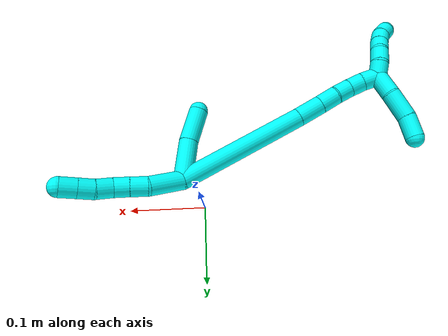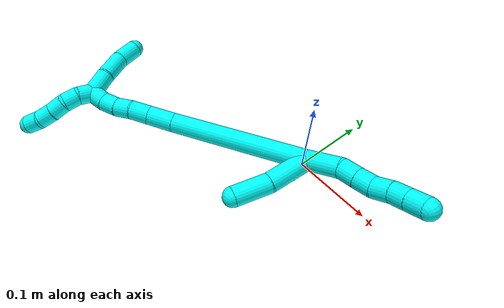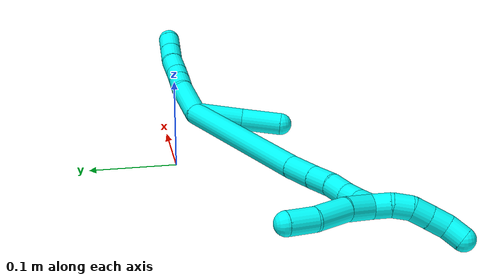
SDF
<sdf version="1.7">
 <world name="default">
  <model name="3">
   <static>0</static>
   <link name="3">
    <collision name="collision-cylinder-e_1_2_8">
     <pose>0.021438 0.005071 -0.004015 -2.2406 1.27777 -1.98725</pose>
     <geometry><cylinder><radius>0.0125</radius><length>0.044784</length></cylinder></geometry>
     <surface>
      <friction><ode><mu>1.16</mu><mu2>1.16</mu2><slip1>0</slip1><slip2>0</slip2></ode></friction>
      <contact><ode><kp>1e+06</kp><kd>1</kd><max_vel>0</max_vel><min_depth>0.001</min_depth></ode></contact>
     </surface>
    </collision>
    <visual name="visual-cylinder-e_1_2_8">
     <pose>0.021438 0.005071 -0.004015 -2.2406 1.27777 -1.98725</pose>
     <geometry><cylinder><radius>0.0125</radius><length>0.044784</length></cylinder></geometry>
     <material><ambient>0.003922 1 0.996078 1</ambient></material>
    </visual>
    <collision name="collision-cylinder-e_2_8_9">
     <pose>0.053793 0.010164 -0.007885 -0.152832 1.55724 -0.150782</pose>
     <geometry><cylinder><radius>0.0125</radius><length>0.021837</length></cylinder></geometry>
     <surface>
      <friction><ode><mu>1.16</mu><mu2>1.16</mu2><slip1>0</slip1><slip2>0</slip2></ode></friction>
      <contact><ode><kp>1e+06</kp><kd>1</kd><max_vel>0</max_vel><min_depth>0.001</min_depth></ode></contact>
     </surface>
    </collision>
    <visual name="visual-cylinder-e_2_8_9">
     <pose>0.053793 0.010164 -0.007885 -0.152832 1.55724 -0.150782</pose>
     <geometry><cylinder><radius>0.0125</radius><length>0.021837</length></cylinder></geometry>
     <material><ambient>0.003922 1 0.996078 1</ambient></material>
    </visual>
    <collision name="collision-cylinder-e_3_9_10">
     <pose>0.074806 0.010453 -0.007837 -1.92469 1.54263 -1.89814</pose>
     <geometry><cylinder><radius>0.0125</radius><length>0.020199</length></cylinder></geometry>
     <surface>
      <friction><ode><mu>1.16</mu><mu2>1.16</mu2><slip1>0</slip1><slip2>0</slip2></ode></friction>
      <contact><ode><kp>1e+06</kp><kd>1</kd><max_vel>0</max_vel><min_depth>0.001</min_depth></ode></contact>
     </surface>
    </collision>
    <visual name="visual-cylinder-e_3_9_10">
     <pose>0.074806 0.010453 -0.007837 -1.92469 1.54263 -1.89814</pose>
     <geometry><cylinder><radius>0.0125</radius><length>0.020199</length></cylinder></geometry>
     <material><ambient>0.003922 1 0.996078 1</ambient></material>
    </visual>
    <collision name="collision-cylinder-e_4_10_11">
     <pose>0.095262 0.013651 -0.009044 -1.93231 1.27707 -1.64235</pose>
     <geometry><cylinder><radius>0.0125</radius><length>0.021649</length></cylinder></geometry>
     <surface>
      <friction><ode><mu>1.16</mu><mu2>1.16</mu2><slip1>0</slip1><slip2>0</slip2></ode></friction>
      <contact><ode><kp>1e+06</kp><kd>1</kd><max_vel>0</max_vel><min_depth>0.001</min_depth></ode></contact>
     </surface>
    </collision>
    <visual name="visual-cylinder-e_4_10_11">
     <pose>0.095262 0.013651 -0.009044 -1.93231 1.27707 -1.64235</pose>
     <geometry><cylinder><radius>0.0125</radius><length>0.021649</length></cylinder></geometry>
     <material><ambient>0.003922 1 0.996078 1</ambient></material>
    </visual>
    <collision name="collision-cylinder-e_5_11_12">
     <pose>0.115382 0.018758 -0.009391 -1.23418 1.33885 -1.0232</pose>
     <geometry><cylinder><radius>0.0125</radius><length>0.020054</length></cylinder></geometry>
     <surface>
      <friction><ode><mu>1.16</mu><mu2>1.16</mu2><slip1>0</slip1><slip2>0</slip2></ode></friction>
      <contact><ode><kp>1e+06</kp><kd>1</kd><max_vel>0</max_vel><min_depth>0.001</min_depth></ode></contact>
     </surface>
    </collision>
    <visual name="visual-cylinder-e_5_11_12">
     <pose>0.115382 0.018758 -0.009391 -1.23418 1.33885 -1.0232</pose>
     <geometry><cylinder><radius>0.0125</radius><length>0.020054</length></cylinder></geometry>
     <material><ambient>0.003922 1 0.996078 1</ambient></material>
    </visual>
    <collision name="collision-cylinder-e_6_12_6">
     <pose>0.135589 0.023284 -0.007845 -1.24862 1.33796 -1.03548</pose>
     <geometry><cylinder><radius>0.0125</radius><length>0.021477</length></cylinder></geometry>
     <surface>
      <friction><ode><mu>1.16</mu><mu2>1.16</mu2><slip1>0</slip1><slip2>0</slip2></ode></friction>
      <contact><ode><kp>1e+06</kp><kd>1</kd><max_vel>0</max_vel><min_depth>0.001</min_depth></ode></contact>
     </surface>
    </collision>
    <visual name="visual-cylinder-e_6_12_6">
     <pose>0.135589 0.023284 -0.007845 -1.24862 1.33796 -1.03548</pose>
     <geometry><cylinder><radius>0.0125</radius><length>0.021477</length></cylinder></geometry>
     <material><ambient>0.003922 1 0.996078 1</ambient></material>
    </visual>
    <collision name="collision-cylinder-e_1_2_13">
     <pose>-0.005129 -0.004913 0.026054 0.186393 -0.191086 -0.017914</pose>
     <geometry><cylinder><radius>0.0125</radius><length>0.05401</length></cylinder></geometry>
     <surface>
      <friction><ode><mu>1.16</mu><mu2>1.16</mu2><slip1>0</slip1><slip2>0</slip2></ode></friction>
      <contact><ode><kp>1e+06</kp><kd>1</kd><max_vel>0</max_vel><min_depth>0.001</min_depth></ode></contact>
     </surface>
    </collision>
    <visual name="visual-cylinder-e_1_2_13">
     <pose>-0.005129 -0.004913 0.026054 0.186393 -0.191086 -0.017914</pose>
     <geometry><cylinder><radius>0.0125</radius><length>0.05401</length></cylinder></geometry>
     <material><ambient>0.003922 1 0.996078 1</ambient></material>
    </visual>
    <collision name="collision-cylinder-e_2_13_5">
     <pose>-0.018026 -0.011765 0.073665 0.089668 -0.344592 -0.015614</pose>
     <geometry><cylinder><radius>0.0125</radius><length>0.04599</length></cylinder></geometry>
     <surface>
      <friction><ode><mu>1.16</mu><mu2>1.16</mu2><slip1>0</slip1><slip2>0</slip2></ode></friction>
      <contact><ode><kp>1e+06</kp><kd>1</kd><max_vel>0</max_vel><min_depth>0.001</min_depth></ode></contact>
     </surface>
    </collision>
    <visual name="visual-cylinder-e_2_13_5">
     <pose>-0.018026 -0.011765 0.073665 0.089668 -0.344592 -0.015614</pose>
     <geometry><cylinder><radius>0.0125</radius><length>0.04599</length></cylinder></geometry>
     <material><ambient>0.003922 1 0.996078 1</ambient></material>
    </visual>
    <collision name="collision-cylinder-e_1_2_14">
     <pose>-0.077976 0.005439 0.038109 -0.141764 -1.11222 0.088203</pose>
     <geometry><cylinder><radius>0.0125</radius><length>0.173921</length></cylinder></geometry>
     <surface>
      <friction><ode><mu>1.16</mu><mu2>1.16</mu2><slip1>0</slip1><slip2>0</slip2></ode></friction>
      <contact><ode><kp>1e+06</kp><kd>1</kd><max_vel>0</max_vel><min_depth>0.001</min_depth></ode></contact>
     </surface>
    </collision>
    <visual name="visual-cylinder-e_1_2_14">
     <pose>-0.077976 0.005439 0.038109 -0.141764 -1.11222 0.088203</pose>
     <geometry><cylinder><radius>0.0125</radius><length>0.173921</length></cylinder></geometry>
     <material><ambient>0.003922 1 0.996078 1</ambient></material>
    </visual>
    <collision name="collision-cylinder-e_2_14_15">
     <pose>-0.171291 0.012824 0.084156 -0.240425 -1.08123 0.144765</pose>
     <geometry><cylinder><radius>0.0125</radius><length>0.03476</length></cylinder></geometry>
     <surface>
      <friction><ode><mu>1.16</mu><mu2>1.16</mu2><slip1>0</slip1><slip2>0</slip2></ode></friction>
      <contact><ode><kp>1e+06</kp><kd>1</kd><max_vel>0</max_vel><min_depth>0.001</min_depth></ode></contact>
     </surface>
    </collision>
    <visual name="visual-cylinder-e_2_14_15">
     <pose>-0.171291 0.012824 0.084156 -0.240425 -1.08123 0.144765</pose>
     <geometry><cylinder><radius>0.0125</radius><length>0.03476</length></cylinder></geometry>
     <material><ambient>0.003922 1 0.996078 1</ambient></material>
    </visual>
    <collision name="collision-cylinder-e_3_15_16">
     <pose>-0.19796 0.01648 0.098217 -0.272366 -1.05946 0.160136</pose>
     <geometry><cylinder><radius>0.0125</radius><length>0.025985</length></cylinder></geometry>
     <surface>
      <friction><ode><mu>1.16</mu><mu2>1.16</mu2><slip1>0</slip1><slip2>0</slip2></ode></friction>
      <contact><ode><kp>1e+06</kp><kd>1</kd><max_vel>0</max_vel><min_depth>0.001</min_depth></ode></contact>
     </surface>
    </collision>
    <visual name="visual-cylinder-e_3_15_16">
     <pose>-0.19796 0.01648 0.098217 -0.272366 -1.05946 0.160136</pose>
     <geometry><cylinder><radius>0.0125</radius><length>0.025985</length></cylinder></geometry>
     <material><ambient>0.003922 1 0.996078 1</ambient></material>
    </visual>
    <collision name="collision-cylinder-e_4_16_17">
     <pose>-0.219228 0.017882 0.109332 0.061768 -1.10449 -0.038069</pose>
     <geometry><cylinder><radius>0.0125</radius><length>0.022249</length></cylinder></geometry>
     <surface>
      <friction><ode><mu>1.16</mu><mu2>1.16</mu2><slip1>0</slip1><slip2>0</slip2></ode></friction>
      <contact><ode><kp>1e+06</kp><kd>1</kd><max_vel>0</max_vel><min_depth>0.001</min_depth></ode></contact>
     </surface>
    </collision>
    <visual name="visual-cylinder-e_4_16_17">
     <pose>-0.219228 0.017882 0.109332 0.061768 -1.10449 -0.038069</pose>
     <geometry><cylinder><radius>0.0125</radius><length>0.022249</length></cylinder></geometry>
     <material><ambient>0.003922 1 0.996078 1</ambient></material>
    </visual>
    <collision name="collision-cylinder-e_5_17_18">
     <pose>-0.238889 0.019211 0.118309 -0.389991 -1.15372 0.255627</pose>
     <geometry><cylinder><radius>0.0125</radius><length>0.021272</length></cylinder></geometry>
     <surface>
      <friction><ode><mu>1.16</mu><mu2>1.16</mu2><slip1>0</slip1><slip2>0</slip2></ode></friction>
      <contact><ode><kp>1e+06</kp><kd>1</kd><max_vel>0</max_vel><min_depth>0.001</min_depth></ode></contact>
     </surface>
    </collision>
    <visual name="visual-cylinder-e_5_17_18">
     <pose>-0.238889 0.019211 0.118309 -0.389991 -1.15372 0.255627</pose>
     <geometry><cylinder><radius>0.0125</radius><length>0.021272</length></cylinder></geometry>
     <material><ambient>0.003922 1 0.996078 1</ambient></material>
    </visual>
    <collision name="collision-cylinder-e_6_18_1">
     <pose>-0.258705 0.024158 0.124775 -0.927495 -1.18191 0.647493</pose>
     <geometry><cylinder><radius>0.0125</radius><length>0.021813</length></cylinder></geometry>
     <surface>
      <friction><ode><mu>1.16</mu><mu2>1.16</mu2><slip1>0</slip1><slip2>0</slip2></ode></friction>
      <contact><ode><kp>1e+06</kp><kd>1</kd><max_vel>0</max_vel><min_depth>0.001</min_depth></ode></contact>
     </surface>
    </collision>
    <visual name="visual-cylinder-e_6_18_1">
     <pose>-0.258705 0.024158 0.124775 -0.927495 -1.18191 0.647493</pose>
     <geometry><cylinder><radius>0.0125</radius><length>0.021813</length></cylinder></geometry>
     <material><ambient>0.003922 1 0.996078 1</ambient></material>
    </visual>
    <collision name="collision-cylinder-e_1_1_19">
     <pose>-0.274214 0.032077 0.112633 -2.83618 -0.339659 1.67872</pose>
     <geometry><cylinder><radius>0.0125</radius><length>0.032522</length></cylinder></geometry>
     <surface>
      <friction><ode><mu>1.16</mu><mu2>1.16</mu2><slip1>0</slip1><slip2>0</slip2></ode></friction>
      <contact><ode><kp>1e+06</kp><kd>1</kd><max_vel>0</max_vel><min_depth>0.001</min_depth></ode></contact>
     </surface>
    </collision>
    <visual name="visual-cylinder-e_1_1_19">
     <pose>-0.274214 0.032077 0.112633 -2.83618 -0.339659 1.67872</pose>
     <geometry><cylinder><radius>0.0125</radius><length>0.032522</length></cylinder></geometry>
     <material><ambient>0.003922 1 0.996078 1</ambient></material>
    </visual>
    <collision name="collision-cylinder-e_2_19_20">
     <pose>-0.287208 0.039088 0.08094 -3.00183 -0.414066 2.49827</pose>
     <geometry><cylinder><radius>0.0125</radius><length>0.03766</length></cylinder></geometry>
     <surface>
      <friction><ode><mu>1.16</mu><mu2>1.16</mu2><slip1>0</slip1><slip2>0</slip2></ode></friction>
      <contact><ode><kp>1e+06</kp><kd>1</kd><max_vel>0</max_vel><min_depth>0.001</min_depth></ode></contact>
     </surface>
    </collision>
    <visual name="visual-cylinder-e_2_19_20">
     <pose>-0.287208 0.039088 0.08094 -3.00183 -0.414066 2.49827</pose>
     <geometry><cylinder><radius>0.0125</radius><length>0.03766</length></cylinder></geometry>
     <material><ambient>0.003922 1 0.996078 1</ambient></material>
    </visual>
    <collision name="collision-cylinder-e_3_20_4">
     <pose>-0.297209 0.043268 0.049267 -3.0204 -0.163434 1.86643</pose>
     <geometry><cylinder><radius>0.0125</radius><length>0.029818</length></cylinder></geometry>
     <surface>
      <friction><ode><mu>1.16</mu><mu2>1.16</mu2><slip1>0</slip1><slip2>0</slip2></ode></friction>
      <contact><ode><kp>1e+06</kp><kd>1</kd><max_vel>0</max_vel><min_depth>0.001</min_depth></ode></contact>
     </surface>
    </collision>
    <visual name="visual-cylinder-e_3_20_4">
     <pose>-0.297209 0.043268 0.049267 -3.0204 -0.163434 1.86643</pose>
     <geometry><cylinder><radius>0.0125</radius><length>0.029818</length></cylinder></geometry>
     <material><ambient>0.003922 1 0.996078 1</ambient></material>
    </visual>
    <collision name="collision-cylinder-e_1_1_21">
     <pose>-0.271244 0.028479 0.136898 -0.104595 -0.247295 0.013011</pose>
     <geometry><cylinder><radius>0.0125</radius><length>0.02</length></cylinder></geometry>
     <surface>
      <friction><ode><mu>1.16</mu><mu2>1.16</mu2><slip1>0</slip1><slip2>0</slip2></ode></friction>
      <contact><ode><kp>1e+06</kp><kd>1</kd><max_vel>0</max_vel><min_depth>0.001</min_depth></ode></contact>
     </surface>
    </collision>
    <visual name="visual-cylinder-e_1_1_21">
     <pose>-0.271244 0.028479 0.136898 -0.104595 -0.247295 0.013011</pose>
     <geometry><cylinder><radius>0.0125</radius><length>0.02</length></cylinder></geometry>
     <material><ambient>0.003922 1 0.996078 1</ambient></material>
    </visual>
    <collision name="collision-cylinder-e_2_21_22">
     <pose>-0.275887 0.02753 0.156098 0.202444 -0.221262 -0.022565</pose>
     <geometry><cylinder><radius>0.0125</radius><length>0.02</length></cylinder></geometry>
     <surface>
      <friction><ode><mu>1.16</mu><mu2>1.16</mu2><slip1>0</slip1><slip2>0</slip2></ode></friction>
      <contact><ode><kp>1e+06</kp><kd>1</kd><max_vel>0</max_vel><min_depth>0.001</min_depth></ode></contact>
     </surface>
    </collision>
    <visual name="visual-cylinder-e_2_21_22">
     <pose>-0.275887 0.02753 0.156098 0.202444 -0.221262 -0.022565</pose>
     <geometry><cylinder><radius>0.0125</radius><length>0.02</length></cylinder></geometry>
     <material><ambient>0.003922 1 0.996078 1</ambient></material>
    </visual>
    <collision name="collision-cylinder-e_3_22_23">
     <pose>-0.281153 0.020817 0.173901 0.522689 -0.31223 -0.084145</pose>
     <geometry><cylinder><radius>0.0125</radius><length>0.02</length></cylinder></geometry>
     <surface>
      <friction><ode><mu>1.16</mu><mu2>1.16</mu2><slip1>0</slip1><slip2>0</slip2></ode></friction>
      <contact><ode><kp>1e+06</kp><kd>1</kd><max_vel>0</max_vel><min_depth>0.001</min_depth></ode></contact>
     </surface>
    </collision>
    <visual name="visual-cylinder-e_3_22_23">
     <pose>-0.281153 0.020817 0.173901 0.522689 -0.31223 -0.084145</pose>
     <geometry><cylinder><radius>0.0125</radius><length>0.02</length></cylinder></geometry>
     <material><ambient>0.003922 1 0.996078 1</ambient></material>
    </visual>
    <collision name="collision-cylinder-e_4_23_24">
     <pose>-0.288285 0.011775 0.190215 0.488875 -0.418108 -0.105734</pose>
     <geometry><cylinder><radius>0.0125</radius><length>0.02</length></cylinder></geometry>
     <surface>
      <friction><ode><mu>1.16</mu><mu2>1.16</mu2><slip1>0</slip1><slip2>0</slip2></ode></friction>
      <contact><ode><kp>1e+06</kp><kd>1</kd><max_vel>0</max_vel><min_depth>0.001</min_depth></ode></contact>
     </surface>
    </collision>
    <visual name="visual-cylinder-e_4_23_24">
     <pose>-0.288285 0.011775 0.190215 0.488875 -0.418108 -0.105734</pose>
     <geometry><cylinder><radius>0.0125</radius><length>0.02</length></cylinder></geometry>
     <material><ambient>0.003922 1 0.996078 1</ambient></material>
    </visual>
    <collision name="collision-cylinder-e_5_24_3">
     <pose>-0.298855 0.003286 0.204608 0.585754 -0.708828 -0.22225</pose>
     <geometry><cylinder><radius>0.0125</radius><length>0.02</length></cylinder></geometry>
     <surface>
      <friction><ode><mu>1.16</mu><mu2>1.16</mu2><slip1>0</slip1><slip2>0</slip2></ode></friction>
      <contact><ode><kp>1e+06</kp><kd>1</kd><max_vel>0</max_vel><min_depth>0.001</min_depth></ode></contact>
     </surface>
    </collision>
    <visual name="visual-cylinder-e_5_24_3">
     <pose>-0.298855 0.003286 0.204608 0.585754 -0.708828 -0.22225</pose>
     <geometry><cylinder><radius>0.0125</radius><length>0.02</length></cylinder></geometry>
     <material><ambient>0.003922 1 0.996078 1</ambient></material>
    </visual>
    <collision name="collision-sphere-3">
     <pose>-0.305365 -0.00091 0.210934 0 -0 0</pose>
     <geometry><sphere><radius>0.0125</radius></sphere></geometry>
     <surface>
      <friction><ode><mu>1.16</mu><mu2>1.16</mu2><slip1>0</slip1><slip2>0</slip2></ode></friction>
      <contact><ode><kp>1e+06</kp><kd>1</kd><max_vel>0</max_vel><min_depth>0.001</min_depth></ode></contact>
     </surface>
    </collision>
    <visual name="visual-sphere-3">
     <pose>-0.305365 -0.00091 0.210934 0 -0 0</pose>
     <geometry><sphere><radius>0.0125</radius></sphere></geometry>
     <material><ambient>0.003922 1 0.996078 1</ambient></material>
    </visual>
    <collision name="collision-sphere-24">
     <pose>-0.292346 0.007483 0.198283 0 -0 0</pose>
     <geometry><sphere><radius>0.0125</radius></sphere></geometry>
     <surface>
      <friction><ode><mu>1.16</mu><mu2>1.16</mu2><slip1>0</slip1><slip2>0</slip2></ode></friction>
      <contact><ode><kp>1e+06</kp><kd>1</kd><max_vel>0</max_vel><min_depth>0.001</min_depth></ode></contact>
     </surface>
    </collision>
    <visual name="visual-sphere-24">
     <pose>-0.292346 0.007483 0.198283 0 -0 0</pose>
     <geometry><sphere><radius>0.0125</radius></sphere></geometry>
     <material><ambient>0.003922 1 0.996078 1</ambient></material>
    </visual>
    <collision name="collision-sphere-23">
     <pose>-0.284225 0.016067 0.182146 0 -0 0</pose>
     <geometry><sphere><radius>0.0125</radius></sphere></geometry>
     <surface>
      <friction><ode><mu>1.16</mu><mu2>1.16</mu2><slip1>0</slip1><slip2>0</slip2></ode></friction>
      <contact><ode><kp>1e+06</kp><kd>1</kd><max_vel>0</max_vel><min_depth>0.001</min_depth></ode></contact>
     </surface>
    </collision>
    <visual name="visual-sphere-23">
     <pose>-0.284225 0.016067 0.182146 0 -0 0</pose>
     <geometry><sphere><radius>0.0125</radius></sphere></geometry>
     <material><ambient>0.003922 1 0.996078 1</ambient></material>
    </visual>
    <collision name="collision-sphere-22">
     <pose>-0.278081 0.025568 0.165655 0 -0 0</pose>
     <geometry><sphere><radius>0.0125</radius></sphere></geometry>
     <surface>
      <friction><ode><mu>1.16</mu><mu2>1.16</mu2><slip1>0</slip1><slip2>0</slip2></ode></friction>
      <contact><ode><kp>1e+06</kp><kd>1</kd><max_vel>0</max_vel><min_depth>0.001</min_depth></ode></contact>
     </surface>
    </collision>
    <visual name="visual-sphere-22">
     <pose>-0.278081 0.025568 0.165655 0 -0 0</pose>
     <geometry><sphere><radius>0.0125</radius></sphere></geometry>
     <material><ambient>0.003922 1 0.996078 1</ambient></material>
    </visual>
    <collision name="collision-sphere-21">
     <pose>-0.273692 0.029491 0.146541 0 -0 0</pose>
     <geometry><sphere><radius>0.0125</radius></sphere></geometry>
     <surface>
      <friction><ode><mu>1.16</mu><mu2>1.16</mu2><slip1>0</slip1><slip2>0</slip2></ode></friction>
      <contact><ode><kp>1e+06</kp><kd>1</kd><max_vel>0</max_vel><min_depth>0.001</min_depth></ode></contact>
     </surface>
    </collision>
    <visual name="visual-sphere-21">
     <pose>-0.273692 0.029491 0.146541 0 -0 0</pose>
     <geometry><sphere><radius>0.0125</radius></sphere></geometry>
     <material><ambient>0.003922 1 0.996078 1</ambient></material>
    </visual>
    <collision name="collision-sphere-4">
     <pose>-0.299635 0.045047 0.034664 0 -0 0</pose>
     <geometry><sphere><radius>0.0125</radius></sphere></geometry>
     <surface>
      <friction><ode><mu>1.16</mu><mu2>1.16</mu2><slip1>0</slip1><slip2>0</slip2></ode></friction>
      <contact><ode><kp>1e+06</kp><kd>1</kd><max_vel>0</max_vel><min_depth>0.001</min_depth></ode></contact>
     </surface>
    </collision>
    <visual name="visual-sphere-4">
     <pose>-0.299635 0.045047 0.034664 0 -0 0</pose>
     <geometry><sphere><radius>0.0125</radius></sphere></geometry>
     <material><ambient>0.003922 1 0.996078 1</ambient></material>
    </visual>
    <collision name="collision-sphere-20">
     <pose>-0.294784 0.04149 0.063869 0 -0 0</pose>
     <geometry><sphere><radius>0.0125</radius></sphere></geometry>
     <surface>
      <friction><ode><mu>1.16</mu><mu2>1.16</mu2><slip1>0</slip1><slip2>0</slip2></ode></friction>
      <contact><ode><kp>1e+06</kp><kd>1</kd><max_vel>0</max_vel><min_depth>0.001</min_depth></ode></contact>
     </surface>
    </collision>
    <visual name="visual-sphere-20">
     <pose>-0.294784 0.04149 0.063869 0 -0 0</pose>
     <geometry><sphere><radius>0.0125</radius></sphere></geometry>
     <material><ambient>0.003922 1 0.996078 1</ambient></material>
    </visual>
    <collision name="collision-sphere-12">
     <pose>0.12514 0.020933 -0.00863 0 -0 0</pose>
     <geometry><sphere><radius>0.0125</radius></sphere></geometry>
     <surface>
      <friction><ode><mu>1.16</mu><mu2>1.16</mu2><slip1>0</slip1><slip2>0</slip2></ode></friction>
      <contact><ode><kp>1e+06</kp><kd>1</kd><max_vel>0</max_vel><min_depth>0.001</min_depth></ode></contact>
     </surface>
    </collision>
    <visual name="visual-sphere-12">
     <pose>0.12514 0.020933 -0.00863 0 -0 0</pose>
     <geometry><sphere><radius>0.0125</radius></sphere></geometry>
     <material><ambient>0.003922 1 0.996078 1</ambient></material>
    </visual>
    <collision name="collision-sphere-11">
     <pose>0.105623 0.016582 -0.010152 0 -0 0</pose>
     <geometry><sphere><radius>0.0125</radius></sphere></geometry>
     <surface>
      <friction><ode><mu>1.16</mu><mu2>1.16</mu2><slip1>0</slip1><slip2>0</slip2></ode></friction>
      <contact><ode><kp>1e+06</kp><kd>1</kd><max_vel>0</max_vel><min_depth>0.001</min_depth></ode></contact>
     </surface>
    </collision>
    <visual name="visual-sphere-11">
     <pose>0.105623 0.016582 -0.010152 0 -0 0</pose>
     <geometry><sphere><radius>0.0125</radius></sphere></geometry>
     <material><ambient>0.003922 1 0.996078 1</ambient></material>
    </visual>
    <collision name="collision-sphere-10">
     <pose>0.084901 0.01072 -0.007936 0 -0 0</pose>
     <geometry><sphere><radius>0.0125</radius></sphere></geometry>
     <surface>
      <friction><ode><mu>1.16</mu><mu2>1.16</mu2><slip1>0</slip1><slip2>0</slip2></ode></friction>
      <contact><ode><kp>1e+06</kp><kd>1</kd><max_vel>0</max_vel><min_depth>0.001</min_depth></ode></contact>
     </surface>
    </collision>
    <visual name="visual-sphere-10">
     <pose>0.084901 0.01072 -0.007936 0 -0 0</pose>
     <geometry><sphere><radius>0.0125</radius></sphere></geometry>
     <material><ambient>0.003922 1 0.996078 1</ambient></material>
    </visual>
    <collision name="collision-sphere-9">
     <pose>0.064711 0.010186 -0.007738 0 -0 0</pose>
     <geometry><sphere><radius>0.0125</radius></sphere></geometry>
     <surface>
      <friction><ode><mu>1.16</mu><mu2>1.16</mu2><slip1>0</slip1><slip2>0</slip2></ode></friction>
      <contact><ode><kp>1e+06</kp><kd>1</kd><max_vel>0</max_vel><min_depth>0.001</min_depth></ode></contact>
     </surface>
    </collision>
    <visual name="visual-sphere-9">
     <pose>0.064711 0.010186 -0.007738 0 -0 0</pose>
     <geometry><sphere><radius>0.0125</radius></sphere></geometry>
     <material><ambient>0.003922 1 0.996078 1</ambient></material>
    </visual>
    <collision name="collision-sphere-2">
     <geometry><sphere><radius>0.0125</radius></sphere></geometry>
     <surface>
      <friction><ode><mu>1.16</mu><mu2>1.16</mu2><slip1>0</slip1><slip2>0</slip2></ode></friction>
      <contact><ode><kp>1e+06</kp><kd>1</kd><max_vel>0</max_vel><min_depth>0.001</min_depth></ode></contact>
     </surface>
    </collision>
    <visual name="visual-sphere-2">
     <geometry><sphere><radius>0.0125</radius></sphere></geometry>
     <material><ambient>0.003922 1 0.996078 1</ambient></material>
    </visual>
    <collision name="collision-sphere-19">
     <pose>-0.279632 0.036687 0.09801 0 -0 0</pose>
     <geometry><sphere><radius>0.0125</radius></sphere></geometry>
     <surface>
      <friction><ode><mu>1.16</mu><mu2>1.16</mu2><slip1>0</slip1><slip2>0</slip2></ode></friction>
      <contact><ode><kp>1e+06</kp><kd>1</kd><max_vel>0</max_vel><min_depth>0.001</min_depth></ode></contact>
     </surface>
    </collision>
    <visual name="visual-sphere-19">
     <pose>-0.279632 0.036687 0.09801 0 -0 0</pose>
     <geometry><sphere><radius>0.0125</radius></sphere></geometry>
     <material><ambient>0.003922 1 0.996078 1</ambient></material>
    </visual>
    <collision name="collision-sphere-8">
     <pose>0.042875 0.010141 -0.008031 0 -0 0</pose>
     <geometry><sphere><radius>0.0125</radius></sphere></geometry>
     <surface>
      <friction><ode><mu>1.16</mu><mu2>1.16</mu2><slip1>0</slip1><slip2>0</slip2></ode></friction>
      <contact><ode><kp>1e+06</kp><kd>1</kd><max_vel>0</max_vel><min_depth>0.001</min_depth></ode></contact>
     </surface>
    </collision>
    <visual name="visual-sphere-8">
     <pose>0.042875 0.010141 -0.008031 0 -0 0</pose>
     <geometry><sphere><radius>0.0125</radius></sphere></geometry>
     <material><ambient>0.003922 1 0.996078 1</ambient></material>
    </visual>
    <collision name="collision-sphere-6">
     <pose>0.146037 0.025634 -0.007061 0 -0 0</pose>
     <geometry><sphere><radius>0.0125</radius></sphere></geometry>
     <surface>
      <friction><ode><mu>1.16</mu><mu2>1.16</mu2><slip1>0</slip1><slip2>0</slip2></ode></friction>
      <contact><ode><kp>1e+06</kp><kd>1</kd><max_vel>0</max_vel><min_depth>0.001</min_depth></ode></contact>
     </surface>
    </collision>
    <visual name="visual-sphere-6">
     <pose>0.146037 0.025634 -0.007061 0 -0 0</pose>
     <geometry><sphere><radius>0.0125</radius></sphere></geometry>
     <material><ambient>0.003922 1 0.996078 1</ambient></material>
    </visual>
    <collision name="collision-sphere-13">
     <pose>-0.010258 -0.009827 0.052109 0 -0 0</pose>
     <geometry><sphere><radius>0.0125</radius></sphere></geometry>
     <surface>
      <friction><ode><mu>1.16</mu><mu2>1.16</mu2><slip1>0</slip1><slip2>0</slip2></ode></friction>
      <contact><ode><kp>1e+06</kp><kd>1</kd><max_vel>0</max_vel><min_depth>0.001</min_depth></ode></contact>
     </surface>
    </collision>
    <visual name="visual-sphere-13">
     <pose>-0.010258 -0.009827 0.052109 0 -0 0</pose>
     <geometry><sphere><radius>0.0125</radius></sphere></geometry>
     <material><ambient>0.003922 1 0.996078 1</ambient></material>
    </visual>
    <collision name="collision-sphere-5">
     <pose>-0.025794 -0.013703 0.095221 0 -0 0</pose>
     <geometry><sphere><radius>0.0125</radius></sphere></geometry>
     <surface>
      <friction><ode><mu>1.16</mu><mu2>1.16</mu2><slip1>0</slip1><slip2>0</slip2></ode></friction>
      <contact><ode><kp>1e+06</kp><kd>1</kd><max_vel>0</max_vel><min_depth>0.001</min_depth></ode></contact>
     </surface>
    </collision>
    <visual name="visual-sphere-5">
     <pose>-0.025794 -0.013703 0.095221 0 -0 0</pose>
     <geometry><sphere><radius>0.0125</radius></sphere></geometry>
     <material><ambient>0.003922 1 0.996078 1</ambient></material>
    </visual>
    <collision name="collision-sphere-14">
     <pose>-0.155952 0.010878 0.076218 0 -0 0</pose>
     <geometry><sphere><radius>0.0125</radius></sphere></geometry>
     <surface>
      <friction><ode><mu>1.16</mu><mu2>1.16</mu2><slip1>0</slip1><slip2>0</slip2></ode></friction>
      <contact><ode><kp>1e+06</kp><kd>1</kd><max_vel>0</max_vel><min_depth>0.001</min_depth></ode></contact>
     </surface>
    </collision>
    <visual name="visual-sphere-14">
     <pose>-0.155952 0.010878 0.076218 0 -0 0</pose>
     <geometry><sphere><radius>0.0125</radius></sphere></geometry>
     <material><ambient>0.003922 1 0.996078 1</ambient></material>
    </visual>
    <collision name="collision-sphere-15">
     <pose>-0.186629 0.01477 0.092094 0 -0 0</pose>
     <geometry><sphere><radius>0.0125</radius></sphere></geometry>
     <surface>
      <friction><ode><mu>1.16</mu><mu2>1.16</mu2><slip1>0</slip1><slip2>0</slip2></ode></friction>
      <contact><ode><kp>1e+06</kp><kd>1</kd><max_vel>0</max_vel><min_depth>0.001</min_depth></ode></contact>
     </surface>
    </collision>
    <visual name="visual-sphere-15">
     <pose>-0.186629 0.01477 0.092094 0 -0 0</pose>
     <geometry><sphere><radius>0.0125</radius></sphere></geometry>
     <material><ambient>0.003922 1 0.996078 1</ambient></material>
    </visual>
    <collision name="collision-sphere-16">
     <pose>-0.209291 0.018191 0.104341 0 -0 0</pose>
     <geometry><sphere><radius>0.0125</radius></sphere></geometry>
     <surface>
      <friction><ode><mu>1.16</mu><mu2>1.16</mu2><slip1>0</slip1><slip2>0</slip2></ode></friction>
      <contact><ode><kp>1e+06</kp><kd>1</kd><max_vel>0</max_vel><min_depth>0.001</min_depth></ode></contact>
     </surface>
    </collision>
    <visual name="visual-sphere-16">
     <pose>-0.209291 0.018191 0.104341 0 -0 0</pose>
     <geometry><sphere><radius>0.0125</radius></sphere></geometry>
     <material><ambient>0.003922 1 0.996078 1</ambient></material>
    </visual>
    <collision name="collision-sphere-17">
     <pose>-0.229164 0.017573 0.114324 0 -0 0</pose>
     <geometry><sphere><radius>0.0125</radius></sphere></geometry>
     <surface>
      <friction><ode><mu>1.16</mu><mu2>1.16</mu2><slip1>0</slip1><slip2>0</slip2></ode></friction>
      <contact><ode><kp>1e+06</kp><kd>1</kd><max_vel>0</max_vel><min_depth>0.001</min_depth></ode></contact>
     </surface>
    </collision>
    <visual name="visual-sphere-17">
     <pose>-0.229164 0.017573 0.114324 0 -0 0</pose>
     <geometry><sphere><radius>0.0125</radius></sphere></geometry>
     <material><ambient>0.003922 1 0.996078 1</ambient></material>
    </visual>
    <collision name="collision-sphere-18">
     <pose>-0.248613 0.020849 0.122294 0 -0 0</pose>
     <geometry><sphere><radius>0.0125</radius></sphere></geometry>
     <surface>
      <friction><ode><mu>1.16</mu><mu2>1.16</mu2><slip1>0</slip1><slip2>0</slip2></ode></friction>
      <contact><ode><kp>1e+06</kp><kd>1</kd><max_vel>0</max_vel><min_depth>0.001</min_depth></ode></contact>
     </surface>
    </collision>
    <visual name="visual-sphere-18">
     <pose>-0.248613 0.020849 0.122294 0 -0 0</pose>
     <geometry><sphere><radius>0.0125</radius></sphere></geometry>
     <material><ambient>0.003922 1 0.996078 1</ambient></material>
    </visual>
    <collision name="collision-sphere-1">
     <pose>-0.268797 0.027467 0.127255 0 -0 0</pose>
     <geometry><sphere><radius>0.0125</radius></sphere></geometry>
     <surface>
      <friction><ode><mu>1.16</mu><mu2>1.16</mu2><slip1>0</slip1><slip2>0</slip2></ode></friction>
      <contact><ode><kp>1e+06</kp><kd>1</kd><max_vel>0</max_vel><min_depth>0.001</min_depth></ode></contact>
     </surface>
    </collision>
    <visual name="visual-sphere-1">
     <pose>-0.268797 0.027467 0.127255 0 -0 0</pose>
     <geometry><sphere><radius>0.0125</radius></sphere></geometry>
     <material><ambient>0.003922 1 0.996078 1</ambient></material>
    </visual>
    <inertial>
     <pose>-0.116452 0.013096 0.065231 0 -0 0</pose>
     <mass>0.75</mass>
     <inertia>
      <ixx>0.000233</ixx>
      <ixy>0</ixy>
      <ixz>0</ixz>
      <iyy>0.000537</iyy>
      <iyz>0</iyz>
      <izz>0.000394</izz>
     </inertia>
    </inertial>
   </link>
   <pose>0.023573 -0.026787 0.052831 1.51309 -0.17115 0.038409</pose>
  </model>
 </world>
</sdf>
